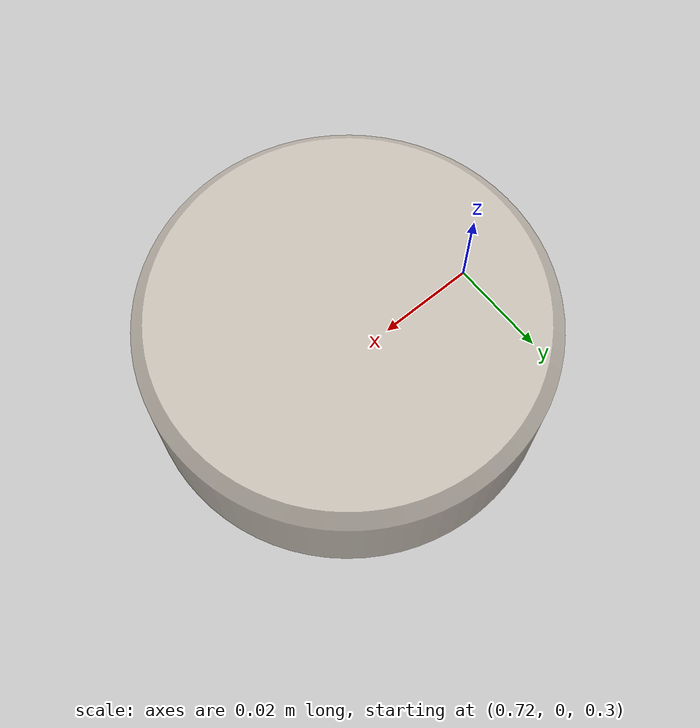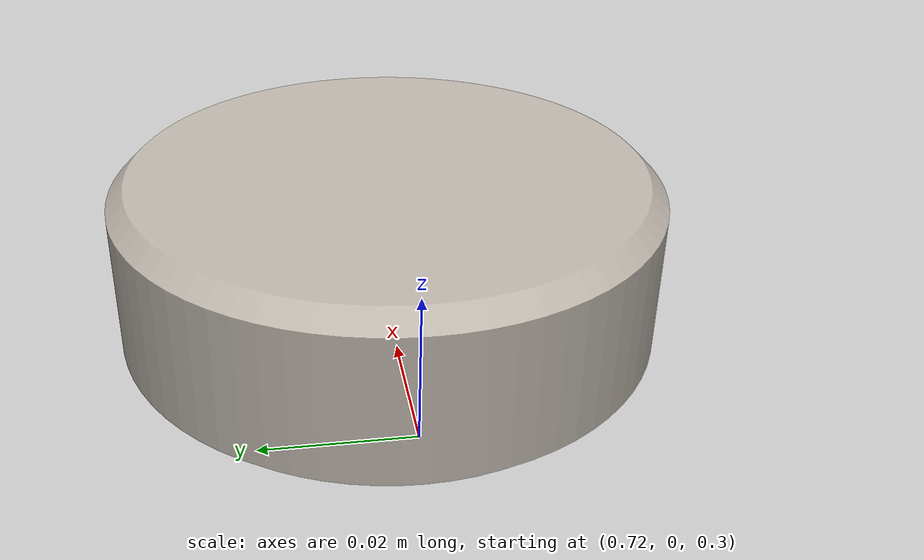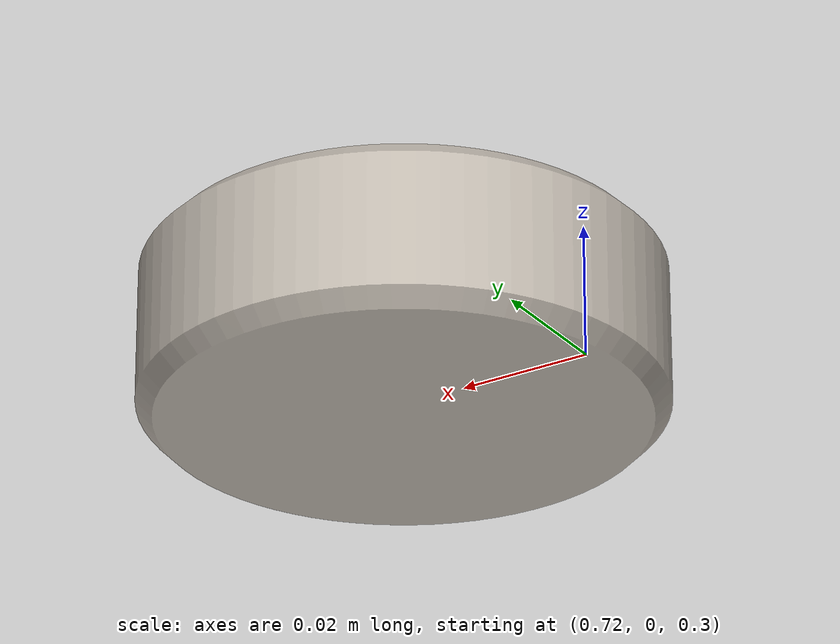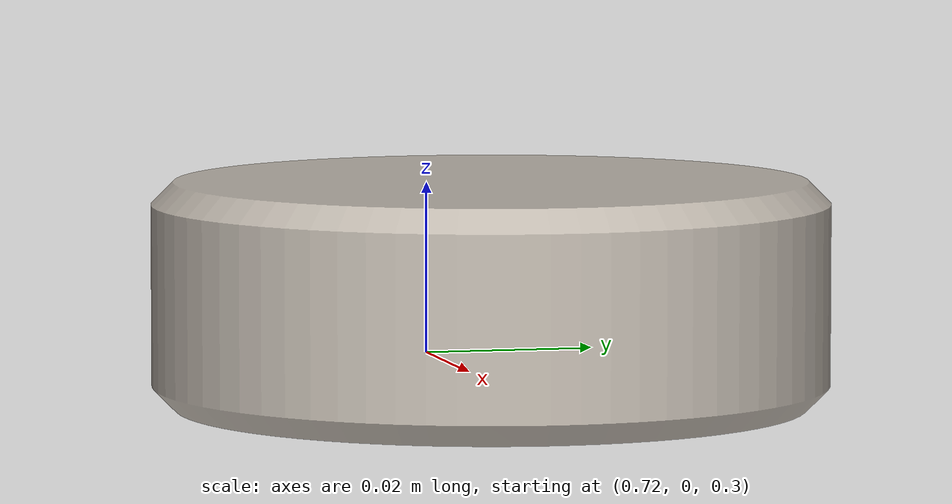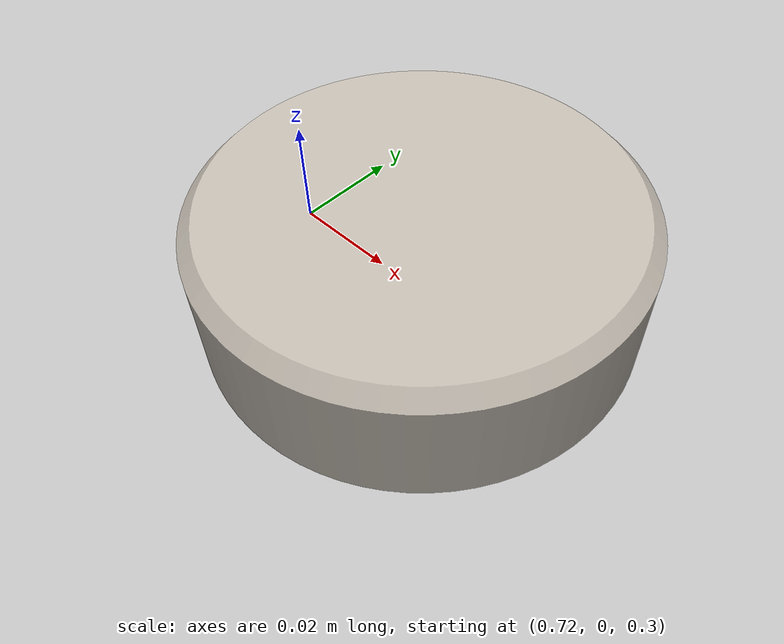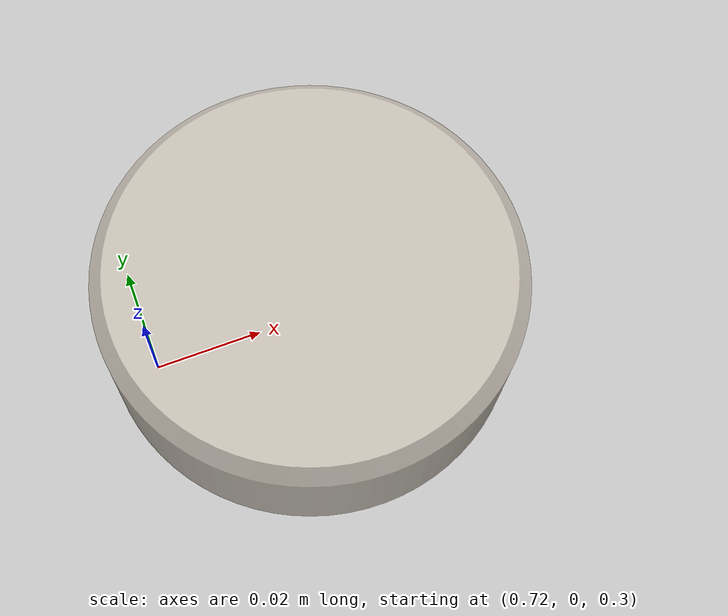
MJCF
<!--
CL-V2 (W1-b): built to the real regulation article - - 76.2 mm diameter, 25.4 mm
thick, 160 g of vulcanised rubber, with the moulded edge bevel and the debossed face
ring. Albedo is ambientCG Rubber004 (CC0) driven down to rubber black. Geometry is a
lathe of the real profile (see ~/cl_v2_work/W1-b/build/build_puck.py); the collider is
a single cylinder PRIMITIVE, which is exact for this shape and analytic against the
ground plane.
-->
<?xml version="1.0"?>
<mujoco model="puck">
  <compiler meshdir="assets" texturedir="assets"/>
  <asset>
    <texture name="puck_tex" type="2d" file="puck_tex.png"/>
    <material name="puck_mat" texture="puck_tex" specular="0.12" shininess="0.08"/>
    <mesh name="puck_vis" file="puck_vis.obj"/>
  </asset>
  <worldbody>
    <body name="puck" pos="0.75 0 0.31">
      <freejoint name="puck_joint"/>
      <!-- 160 g regulation puck; inertia of the solid cylinder at that mass. -->
      <inertial pos="0 0 0" quat="1 0 0 0" mass="0.16"
                diaginertia="6.574e-05 6.574e-05 1.146e-04"/>
      <geom name="puck_visual" type="mesh" mesh="puck_vis" material="puck_mat"
            contype="0" conaffinity="0" group="2" mass="0"/>
      <geom type="cylinder" name="puck_geom" size="0.0381 0.0127" group="3"
            rgba="0.5 0.5 0.5 0.3" condim="3" friction="0.4 0.03 0.003"
            contype="1" conaffinity="1" solref="0.01 1" mass="0"/>
      <site name="object_site" pos="0 0 0" size="0.01" rgba="1 0 0 1"/>
    </body>
  </worldbody>
</mujoco>
